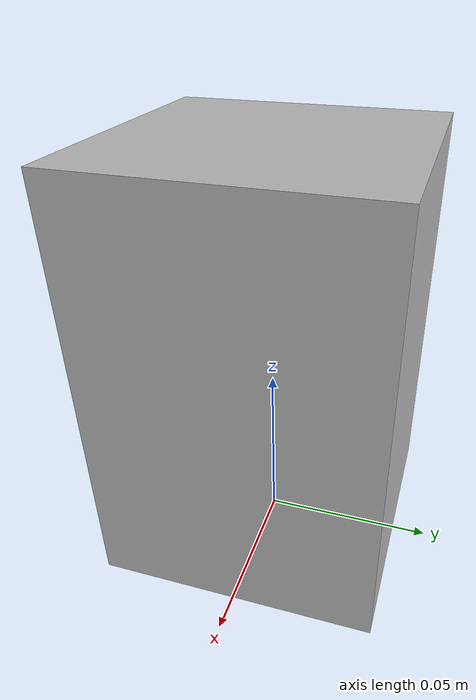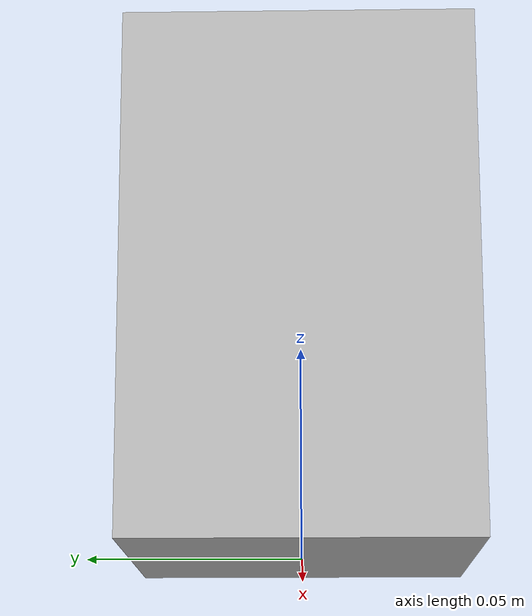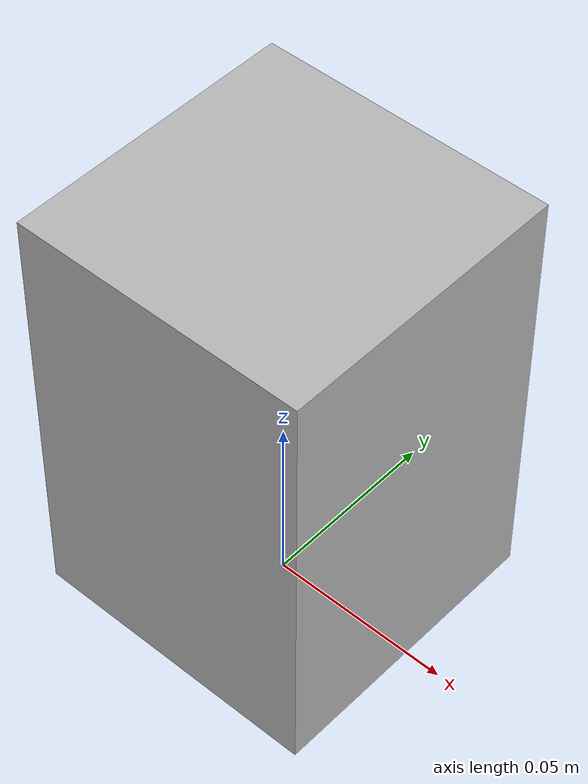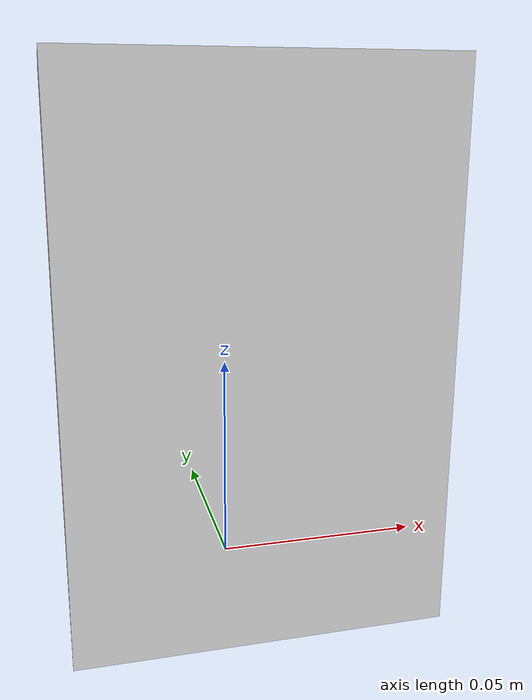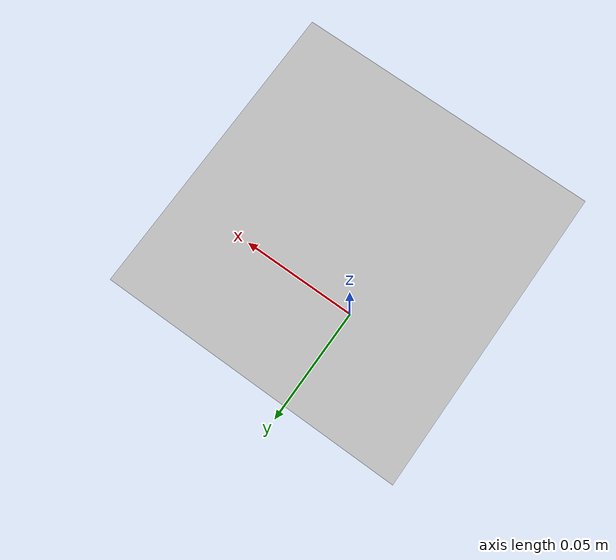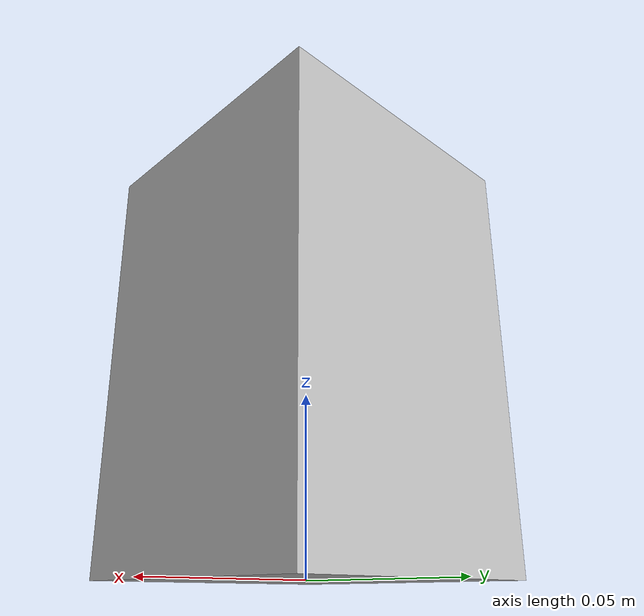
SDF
<?xml version='1.0'?>
<sdf version='1.6'>
  <model name='tea_box'>
    <link name='link'>
      <pose frame=''>0 0 0.06 0 0 0</pose>
      <visual name='visual'>
        <geometry>
          <box>
            <size>0.08 0.08 0.12</size>
          </box>
        </geometry>
        <material>
          <script>
            <uri>model://tea_box/materials/scripts</uri>
            <uri>model://tea_box/materials/textures</uri>
            <name>tea_pat</name>
          </script>
        </material>
        <cast_shadows>1</cast_shadows>
        <transparency>0</transparency>
      </visual>
      <collision name='collision'>
        <laser_retro>0</laser_retro>
        <max_contacts>10</max_contacts>
        <pose frame=''>0 0 0 0 0 0</pose>
        <geometry>
          <box>
            <size>0.08 0.08 0.12</size>
          </box>
        </geometry>
      </collision>
      <inertial>
        <mass>0.1</mass>
        <inertia>
            <ixx>0.00017264</ixx>
            <ixy>0.000000</ixy>
            <ixz>0.000000</ixz>
            <iyy>0.00017264</iyy>
            <iyz>0.000000</iyz>
            <izz>0.00010624</izz>
          </inertia>
      </inertial>
    </link>
    <static>0</static>
    <allow_auto_disable>1</allow_auto_disable>
  </model>
</sdf>
